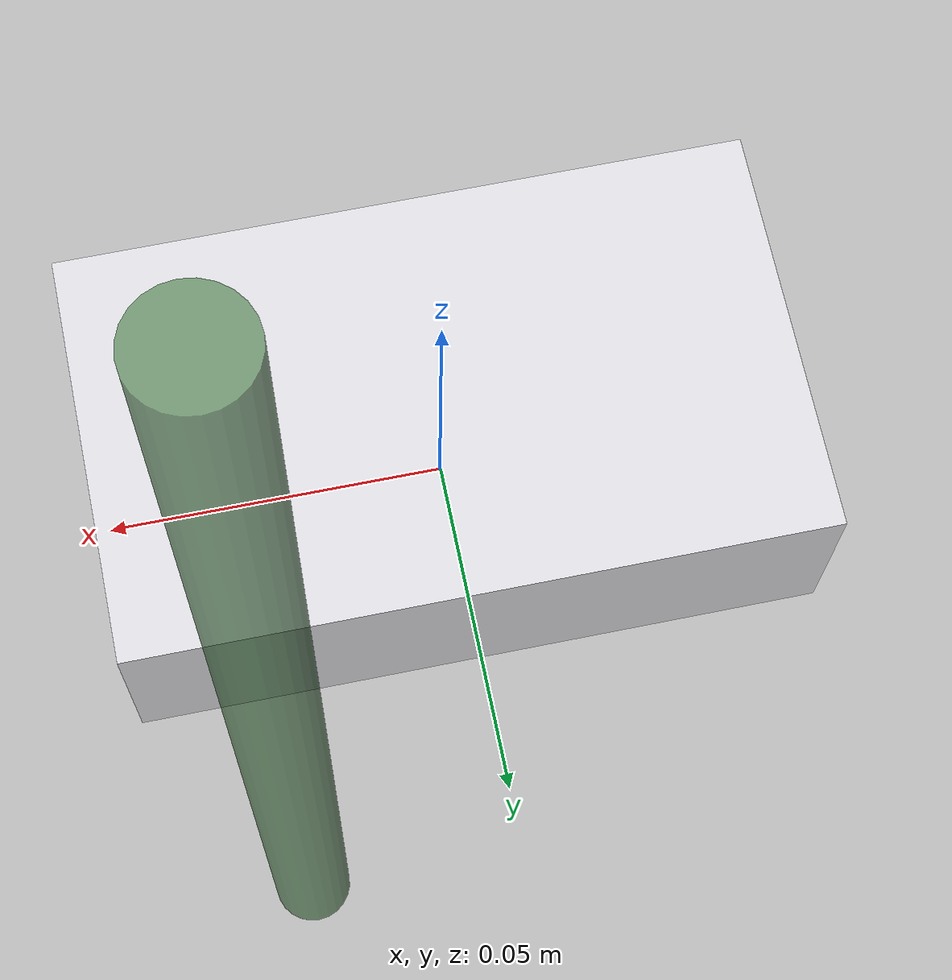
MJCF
<?xml version="1.0" encoding="utf-8"?>
<mujoco model="ph_meter">
  <compiler angle="radian" autolimits="true"/>
  <default>
    <default class="body"><geom contype="1" conaffinity="1"/></default>
  </default>
  <worldbody>
    <body name="base">
      <geom type="box" size="0.05 0.03 0.015" pos="0 0 0.015" rgba="0.85 0.85 0.87 1" class="body"/>
      <body name="probe" pos="0.03 0.06 0.10">
        <joint name="probe_joint" type="hinge" axis="1 0 0" range="-0.6 0.6" damping="0.3" frictionloss="0.5"/>
  <geom type="cylinder" size="0.005 0.09" pos="0 0 0" rgba="0.3 0.5 0.3 0.7" class="body"/>
      </body>
    </body>
  </worldbody>
</mujoco>
